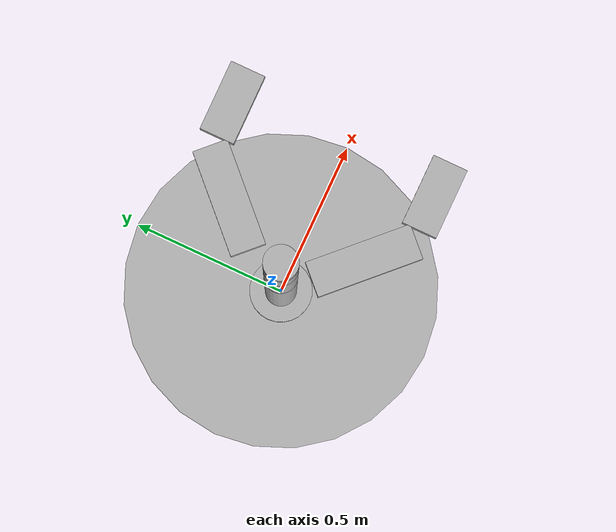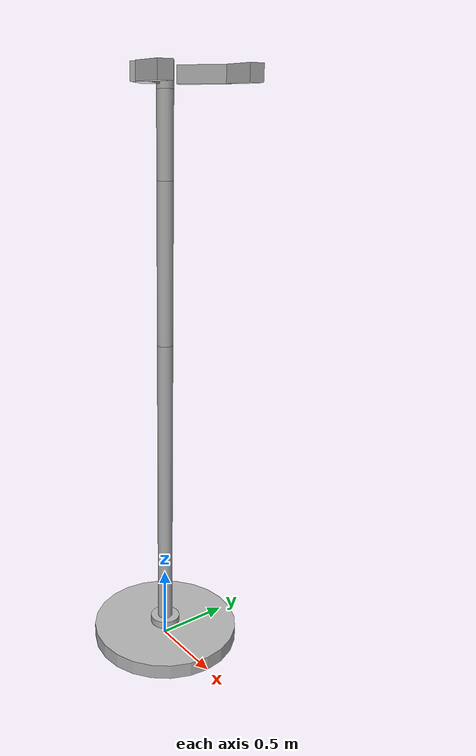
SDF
<?xml version='1.0'?>
<sdf version='1.4'>
    <model name="my_robot">
        <static>false</static>
        <self_collide>1</self_collide>
        <link name='chassis'>
            <pose>0 0 .05 0 0 0</pose>
            <inertial>
                <mass>146.0</mass>
            </inertial>
            <collision name='collision'>
                <geometry>
                    <cylinder>
                        <radius>.5</radius>
                        <length>.1</length>
                    </cylinder>
                </geometry>
            </collision>

            <visual name='visual'>
                <geometry>
                    <cylinder>
                        <radius>.5</radius>
                        <length>.1</length>
                    </cylinder>
                </geometry>
            </visual>
        </link>
        <link name='arm1'>
            <pose>0 0 .125 0 0 0</pose>
            <inertial>
                <mass>2.0</mass>
            </inertial>
            <collision name='collision'>
                <geometry>
                    <cylinder>
                        <radius>.1</radius>
                        <length>.05</length>
                    </cylinder>
                </geometry>
            </collision>

            <visual name='visual'>
                <geometry>
                    <cylinder>
                        <radius>.1</radius>
                        <length>.05</length>
                    </cylinder>
                </geometry>
            </visual>
        </link>
        <link name='arm2'>
            <pose>0 0 1.15 0 0 0</pose>
            <inertial>
                <mass>2.0</mass>
            </inertial>
            <gravity>0</gravity>
            <collision name='collision'>
                <geometry>
                    <cylinder>
                        <radius>.05</radius>
                        <length>2.0</length>
                    </cylinder>
                </geometry>
            </collision>

            <visual name='visual'>
                <geometry>
                    <cylinder>
                        <radius>.05</radius>
                        <length>2.0</length>
                    </cylinder>
                </geometry>
            </visual>
        </link>
        <link name='arm3'>
            <pose>0 0 2.65 0 0 0</pose>
            <inertial>
                <mass>2.0</mass>
            </inertial>
            <gravity>0</gravity>
            <collision name='collision'>
                <geometry>
                    <cylinder>
                        <radius>.05</radius>
                        <length>1.0</length>
                    </cylinder>
                </geometry>
            </collision>

            <visual name='visual'>
                <geometry>
                    <cylinder>
                        <radius>.05</radius>
                        <length>1.0</length>
                    </cylinder>
                </geometry>
            </visual>
        </link>
        <link name='arm4'>
            <pose>0 0 3.4 0 0 0</pose>
            <inertial>
                <mass>1.0</mass>
            </inertial>
            <gravity>0</gravity>
            <collision name='collision'>
                <geometry>
                    <cylinder>
                        <radius>.05</radius>
                        <length>.5</length>
                    </cylinder>
                </geometry>
            </collision>

            <visual name='visual'>
                <geometry>
                    <cylinder>
                        <radius>.05</radius>
                        <length>.5</length>
                    </cylinder>
                </geometry>
            </visual>
        </link>
        <!-- GRIPPER STARTS HERE -->
        <link name="palm">
            <pose>0.0 0.0 3.725 0 0 0</pose>
            <inertial>
                <inertia>
                    <ixx>0.01</ixx>
                    <ixy>0</ixy>
                    <ixz>0</ixz>
                    <iyy>0.01</iyy>
                    <iyz>0</iyz>
                    <izz>0.01</izz>
                </inertia>
                <mass>0.25</mass>
            </inertial>
            <gravity>0</gravity>
            <collision name='collision'>
                <geometry>
                    <cylinder>
                        <radius>.05</radius>
                        <length>.15</length>
                    </cylinder>
                </geometry>
            </collision>

            <visual name='visual'>
                <geometry>
                    <cylinder>
                        <radius>.05</radius>
                        <length>.15</length>
                    </cylinder>
                </geometry>
            </visual>
        </link>
        <link name="left_finger">
            <pose>0.1 0.2 3.725 0 0 -0.78539</pose>
            <inertial>
                <inertia>
                    <ixx>0.01</ixx>
                    <ixy>0</ixy>
                    <ixz>0</ixz>
                    <iyy>0.01</iyy>
                    <iyz>0</iyz>
                    <izz>0.01</izz>
                </inertia>
                <mass>0.1</mass>
            </inertial>
            <gravity>0</gravity>
            <collision name="collision">
                <geometry>
                    <box>
                        <size>0.1 0.3 0.1</size>
                    </box>
                </geometry>
            </collision>
            <visual name="visual">
                <geometry>
                    <box>
                        <size>0.1 0.3 0.1</size>
                    </box>
                </geometry>
                <material>
                    <script>Gazebo/Blue</script>
                </material>
            </visual>
        </link>
        <link name="left_finger_tip">
            <pose>0.336 0.3 3.725 0 0 1.5707</pose>
            <inertial>
                <inertia>
                    <ixx>0.01</ixx>
                    <ixy>0</ixy>
                    <ixz>0</ixz>
                    <iyy>0.01</iyy>
                    <iyz>0</iyz>
                    <izz>0.01</izz>
                </inertia>
                <mass>0.1</mass>
            </inertial>
            <gravity>0</gravity>
            <collision name="collision">
                <geometry>
                    <box>
                        <size>0.1 0.2 0.1</size>
                    </box>
                </geometry>
            </collision>
            <visual name="visual">
                <geometry>
                    <box>
                        <size>0.1 0.2 0.1</size>
                    </box>
                </geometry>
                <material>
                    <script>Gazebo/Blue</script>
                </material>
            </visual>
        </link>
        <link name="right_finger">
            <pose>0.1 -0.2 3.725 0 0 .78539</pose>
            <inertial>
                <inertia>
                    <ixx>0.01</ixx>
                    <ixy>0</ixy>
                    <ixz>0</ixz>
                    <iyy>0.01</iyy>
                    <iyz>0</iyz>
                    <izz>0.01</izz>
                </inertia>
                <mass>0.1</mass>
            </inertial>
            <gravity>0</gravity>
            <collision name="collision">
                <geometry>
                    <box>
                        <size>0.1 0.3 0.1</size>
                    </box>
                </geometry>
            </collision>
            <visual name="visual">
                <geometry>
                    <box>
                        <size>0.1 0.3 0.1</size>
                    </box>
                </geometry>
                <material>
                    <script>Gazebo/Green</script>
                </material>
            </visual>
        </link>
        <link name="right_finger_tip">
            <pose>0.336 -0.3 3.725 0 0 1.5707</pose>
            <inertial>
                <inertia>
                    <ixx>0.01</ixx>
                    <ixy>0</ixy>
                    <ixz>0</ixz>
                    <iyy>0.01</iyy>
                    <iyz>0</iyz>
                    <izz>0.01</izz>
                </inertia>
                <mass>0.1</mass>
            </inertial>
            <gravity>0</gravity>
            <collision name="collision">
                <geometry>
                    <box>
                        <size>0.1 0.2 0.1</size>
                    </box>
                </geometry>
            </collision>
            <visual name="visual">
                <geometry>
                    <box>
                        <size>0.1 0.2 0.1</size>
                    </box>
                </geometry>
                <material>
                    <script>Gazebo/Green</script>
                </material>
            </visual>
        </link>

        <!-- INDEPENDENT BOX(BOX TO BE PICKED UP BY THE ARM) -->

        <!--  JOINT START HERE -->
        <joint type="revolute" name="chasis_arm1_joint">
            <pose>0 0 -0.025 0 0 0</pose>
            <child>arm1</child>
            <parent>chassis</parent>
            <axis>
                <xyz>0 0 1</xyz>
                <dynamics>
                    <damping>1.0</damping>
                    <friction>.3</friction>
                    <limit>
                        <lower>1.0</lower>
                        <upper>1.0</upper>
                        <effort>40</effort>
                        <velocity>1.0</velocity>
                    </limit>
                </dynamics>
            </axis>
        </joint>
         <joint type="revolute" name="arm1_arm2_joint">
            <pose>0 0 -1 0 0 0</pose>
            <child>arm2</child>
            <parent>arm1</parent>
            <axis>
                <xyz>1 0 0</xyz>
                <dynamics>
                    <damping>1.0</damping>
                    <friction>.3</friction>
                    <limit>
                        <lower>1.0</lower>
                        <upper>1.0</upper>
                        <effort>40</effort>
                        <velocity>1.0</velocity>
                    </limit>
                </dynamics>
            </axis>
        </joint>
        <joint type="revolute" name="arm2_arm3_joint">
            <pose>0 0 -0.5 0 0 0</pose>
            <child>arm3</child>
            <parent>arm2</parent>
            <axis>
                <xyz>1 0 0</xyz>
                <dynamics>
                    <damping>1.0</damping>
                    <friction>.3</friction>
                    <limit>
                        <lower>1.0</lower>
                        <upper>1.0</upper>
                        <effort>40</effort>
                        <velocity>1.0</velocity>
                    </limit>
                </dynamics>
            </axis>
        </joint>

        <joint type="revolute" name="arm3_arm4_joint">
            <pose>0 0 -0.25 0 0 0</pose>
            <child>arm4</child>
            <parent>arm3</parent>
            <axis>
                <xyz>0 1 0</xyz>
                <dynamics>
                    <damping>1.0</damping>
                    <friction>.3</friction>
                    <limit>
                        <lower>1.0</lower>
                        <upper>1.0</upper>
                        <effort>40</effort>
                        <velocity>1.0</velocity>
                    </limit>
                </dynamics>
            </axis>
        </joint>

        <!-- GRIPPER JOINT START HERE -->
        <joint name="palm_arm4" type="revolute">
            <pose>0 0 -0.075 0 0 0</pose>
            <child>palm</child>
            <parent>arm4</parent>
            <axis>
                <limit>
                    <lower>0</lower>
                    <upper>0.9</upper>
                </limit>
                <xyz>0 0 1</xyz>
            </axis>
        </joint>
        <joint name="palm_left_finger" type="revolute">
            <pose>0 -0.15 0 0 0 0</pose>
            <child>left_finger</child>
            <parent>palm</parent>
            <axis>
                <limit>
                    <lower>-0.4</lower>
                    <upper>0.4</upper>
                </limit>
                <xyz>0 0 1</xyz>
            </axis>
        </joint>
        <joint name="palm_right_finger" type="revolute">
            <pose>0 0.15 0 0 0 0</pose>
            <child>right_finger</child>
            <parent>palm</parent>
            <axis>
                <limit>
                    <lower>-0.4</lower>
                    <upper>0.4</upper>
                </limit>
                <xyz>0 0 1</xyz>
            </axis>
        </joint>

        <joint name="left_finger_tip" type="revolute">
            <pose>0 0.1 0 0 0 0</pose>
            <child>left_finger_tip</child>
            <parent>left_finger</parent>
            <axis>
                <limit>
                    <lower>-0.4</lower>
                    <upper>0.4</upper>
                </limit>
                <xyz>1 0 0</xyz>
            </axis>
        </joint>
        <joint name="right_finger_tip" type="revolute">
            <pose>0 0.1 0 0 0 0</pose>
            <child>right_finger_tip</child>
            <parent>right_finger</parent>
            <axis>
                <limit>
                    <lower>-0.4</lower>
                    <upper>0.4</upper>
                </limit>
                <xyz>1 0 0</xyz>
            </axis>
        </joint>

        <!-- GRIPPER JOINT END HERE -->

        <plugin name="arm_control" filename="libListener.so" />
    </model>
</sdf>
